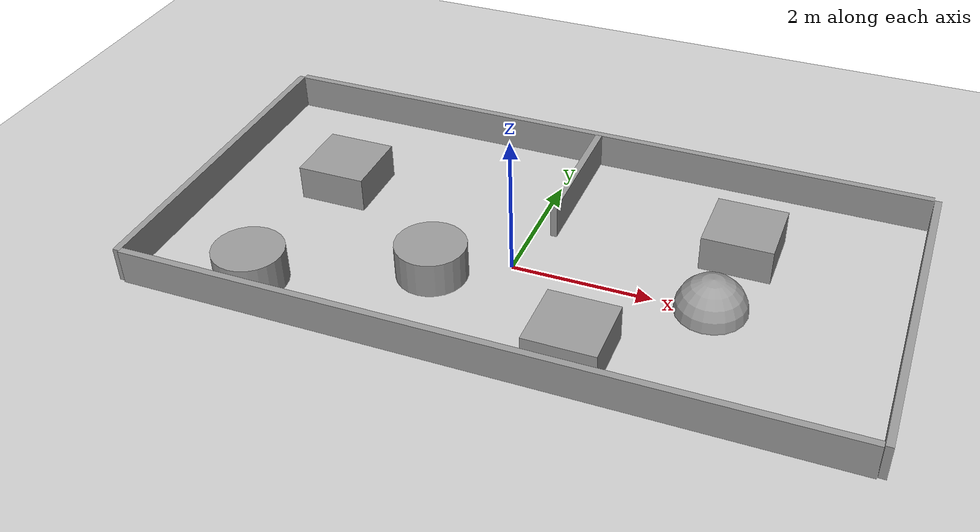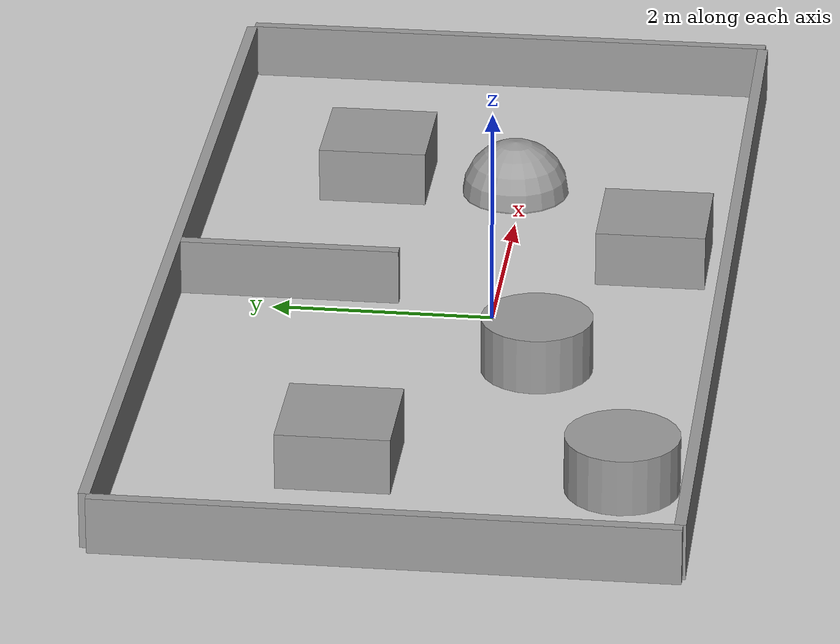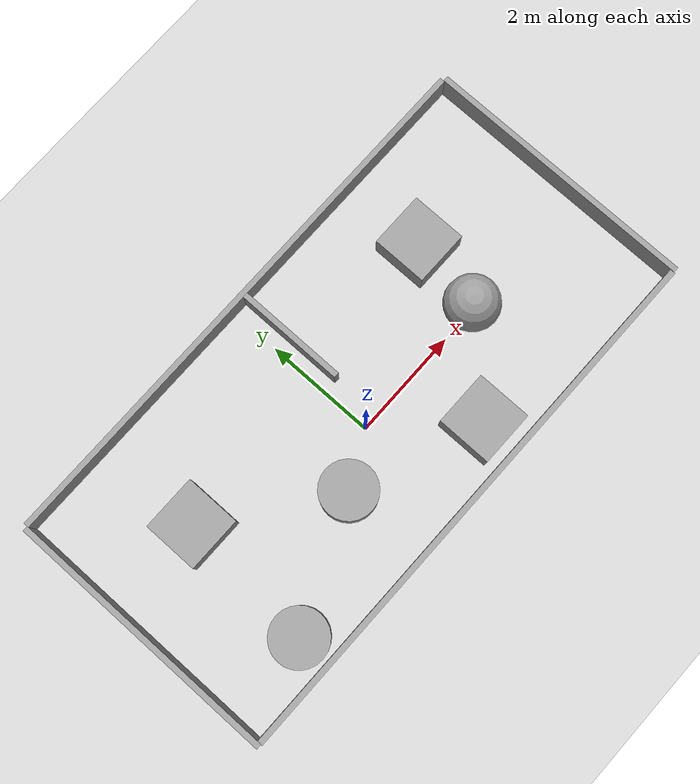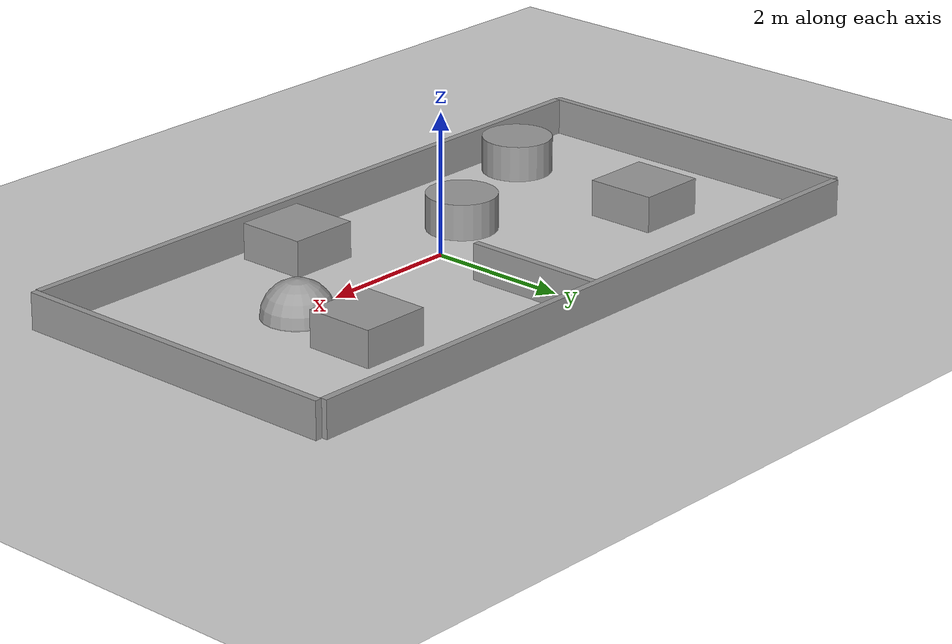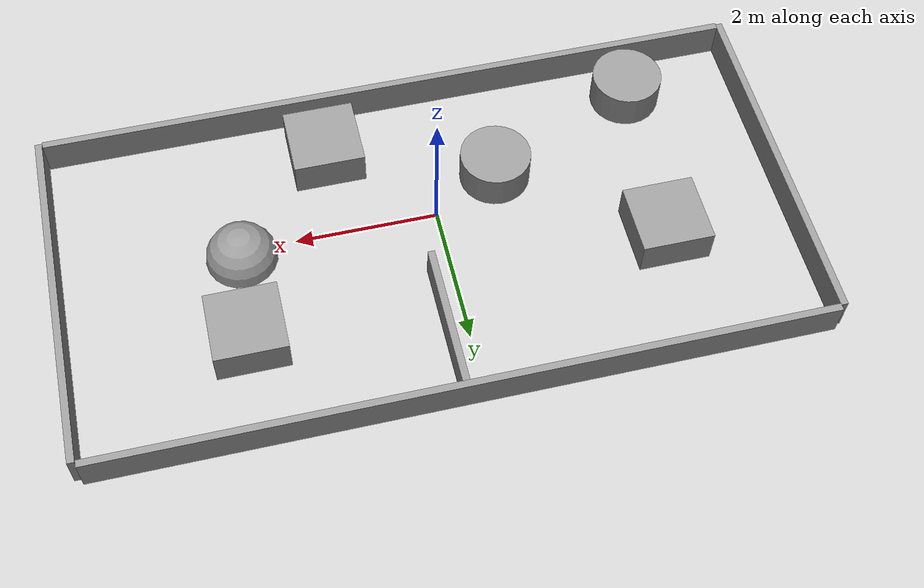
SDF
<?xml version="1.0"?>
<sdf version="1.4">
  <world name="default">

    <!-- Ground Plane -->
    <include>
      <uri>model://ground_plane</uri>
    </include>

    <include>
      <uri>model://sun</uri>
    </include>
    <!-- A simple warehouse -->
    <include>
        <uri>model://alex_warehouse</uri>
        <pose>0 0 0 0 0 0</pose>
    </include>

  </world>
</sdf>

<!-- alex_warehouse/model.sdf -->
<sdf version='1.7'>
  <model name='alex_warehouse'>
    <link name='link_0'>
      <inertial>
        <mass>1</mass>
        <inertia>
          <ixx>0.166667</ixx>
          <ixy>0</ixy>
          <ixz>0</ixz>
          <iyy>0.166667</iyy>
          <iyz>0</iyz>
          <izz>0.166667</izz>
        </inertia>
        <pose>0 0 0 0 -0 0</pose>
      </inertial>
      <pose>0.225405 -2.07708 -0 0 -0 0</pose>
      <gravity>1</gravity>
      <self_collide>0</self_collide>
      <kinematic>0</kinematic>
      <enable_wind>0</enable_wind>
      <visual name='visual'>
        <pose>0 0 0 0 -0 0</pose>
        <geometry>
          <box>
            <size>10 0.1 1</size>
          </box>
        </geometry>
        <material>
          <lighting>1</lighting>
          <script>
            <uri>file://media/materials/scripts/gazebo.material</uri>
            <name>Gazebo/Grey</name>
          </script>
          <shader type='pixel'>
            <normal_map>__default__</normal_map>
          </shader>
          <ambient>0.3 0.3 0.3 1</ambient>
          <diffuse>0.7 0.7 0.7 1</diffuse>
          <specular>0.01 0.01 0.01 1</specular>
          <emissive>0 0 0 1</emissive>
        </material>
        <transparency>0</transparency>
        <cast_shadows>1</cast_shadows>
      </visual>
      <collision name='collision'>
        <laser_retro>0</laser_retro>
        <max_contacts>10</max_contacts>
        <pose>0 0 0 0 -0 0</pose>
        <geometry>
          <box>
            <size>10 0.1 1</size>
          </box>
        </geometry>
        <surface>
          <friction>
            <ode>
              <mu>1</mu>
              <mu2>1</mu2>
              <fdir1>0 0 0</fdir1>
              <slip1>0</slip1>
              <slip2>0</slip2>
            </ode>
            <torsional>
              <coefficient>1</coefficient>
              <patch_radius>0</patch_radius>
              <surface_radius>0</surface_radius>
              <use_patch_radius>1</use_patch_radius>
              <ode>
                <slip>0</slip>
              </ode>
            </torsional>
          </friction>
          <bounce>
            <restitution_coefficient>0</restitution_coefficient>
            <threshold>1e+06</threshold>
          </bounce>
          <contact>
            <collide_without_contact>0</collide_without_contact>
            <collide_without_contact_bitmask>1</collide_without_contact_bitmask>
            <collide_bitmask>1</collide_bitmask>
            <ode>
              <soft_cfm>0</soft_cfm>
              <soft_erp>0.2</soft_erp>
              <kp>1e+13</kp>
              <kd>1</kd>
              <max_vel>0.01</max_vel>
              <min_depth>0</min_depth>
            </ode>
            <bullet>
              <split_impulse>1</split_impulse>
              <split_impulse_penetration_threshold>-0.01</split_impulse_penetration_threshold>
              <soft_cfm>0</soft_cfm>
              <soft_erp>0.2</soft_erp>
              <kp>1e+13</kp>
              <kd>1</kd>
            </bullet>
          </contact>
        </surface>
      </collision>
    </link>
    <link name='link_0_clone'>
      <inertial>
        <mass>1</mass>
        <inertia>
          <ixx>0.166667</ixx>
          <ixy>0</ixy>
          <ixz>0</ixz>
          <iyy>0.166667</iyy>
          <iyz>0</iyz>
          <izz>0.166667</izz>
        </inertia>
        <pose>0 0 0 0 -0 0</pose>
      </inertial>
      <pose>0.225405 2.92292 -0 0 -0 0</pose>
      <gravity>1</gravity>
      <self_collide>0</self_collide>
      <kinematic>0</kinematic>
      <enable_wind>0</enable_wind>
      <visual name='visual'>
        <pose>0 0 0 0 -0 0</pose>
        <geometry>
          <box>
            <size>10 0.1 1</size>
          </box>
        </geometry>
        <material>
          <lighting>1</lighting>
          <script>
            <uri>file://media/materials/scripts/gazebo.material</uri>
            <name>Gazebo/Grey</name>
          </script>
          <shader type='pixel'>
            <normal_map>__default__</normal_map>
          </shader>
          <ambient>0.3 0.3 0.3 1</ambient>
          <diffuse>0.7 0.7 0.7 1</diffuse>
          <specular>0.01 0.01 0.01 1</specular>
          <emissive>0 0 0 1</emissive>
        </material>
        <transparency>0</transparency>
        <cast_shadows>1</cast_shadows>
      </visual>
      <collision name='collision'>
        <laser_retro>0</laser_retro>
        <max_contacts>10</max_contacts>
        <pose>0 0 0 0 -0 0</pose>
        <geometry>
          <box>
            <size>10 0.1 1</size>
          </box>
        </geometry>
        <surface>
          <friction>
            <ode>
              <mu>1</mu>
              <mu2>1</mu2>
              <fdir1>0 0 0</fdir1>
              <slip1>0</slip1>
              <slip2>0</slip2>
            </ode>
            <torsional>
              <coefficient>1</coefficient>
              <patch_radius>0</patch_radius>
              <surface_radius>0</surface_radius>
              <use_patch_radius>1</use_patch_radius>
              <ode>
                <slip>0</slip>
              </ode>
            </torsional>
          </friction>
          <bounce>
            <restitution_coefficient>0</restitution_coefficient>
            <threshold>1e+06</threshold>
          </bounce>
          <contact>
            <collide_without_contact>0</collide_without_contact>
            <collide_without_contact_bitmask>1</collide_without_contact_bitmask>
            <collide_bitmask>1</collide_bitmask>
            <ode>
              <soft_cfm>0</soft_cfm>
              <soft_erp>0.2</soft_erp>
              <kp>1e+13</kp>
              <kd>1</kd>
              <max_vel>0.01</max_vel>
              <min_depth>0</min_depth>
            </ode>
            <bullet>
              <split_impulse>1</split_impulse>
              <split_impulse_penetration_threshold>-0.01</split_impulse_penetration_threshold>
              <soft_cfm>0</soft_cfm>
              <soft_erp>0.2</soft_erp>
              <kp>1e+13</kp>
              <kd>1</kd>
            </bullet>
          </contact>
        </surface>
      </collision>
    </link>
    <link name='link_2'>
      <inertial>
        <mass>1</mass>
        <inertia>
          <ixx>0.145833</ixx>
          <ixy>0</ixy>
          <ixz>0</ixz>
          <iyy>0.145833</iyy>
          <iyz>0</iyz>
          <izz>0.125</izz>
        </inertia>
        <pose>0 0 0 0 -0 0</pose>
      </inertial>
      <pose>-0.967524 -0.500887 -0 0 -0 0</pose>
      <self_collide>0</self_collide>
      <enable_wind>0</enable_wind>
      <kinematic>0</kinematic>
      <visual name='visual'>
        <pose>0 0 0 0 -0 0</pose>
        <geometry>
          <cylinder>
            <radius>0.5</radius>
            <length>1</length>
          </cylinder>
        </geometry>
        <material>
          <lighting>1</lighting>
          <script>
            <uri>file://media/materials/scripts/gazebo.material</uri>
            <name>Gazebo/Grey</name>
          </script>
          <shader type='pixel'/>
        </material>
        <transparency>0</transparency>
        <cast_shadows>1</cast_shadows>
      </visual>
      <collision name='collision'>
        <laser_retro>0</laser_retro>
        <max_contacts>10</max_contacts>
        <pose>0 0 0 0 -0 0</pose>
        <geometry>
          <cylinder>
            <radius>0.5</radius>
            <length>1</length>
          </cylinder>
        </geometry>
        <surface>
          <friction>
            <ode>
              <mu>1</mu>
              <mu2>1</mu2>
              <fdir1>0 0 0</fdir1>
              <slip1>0</slip1>
              <slip2>0</slip2>
            </ode>
            <torsional>
              <coefficient>1</coefficient>
              <patch_radius>0</patch_radius>
              <surface_radius>0</surface_radius>
              <use_patch_radius>1</use_patch_radius>
              <ode>
                <slip>0</slip>
              </ode>
            </torsional>
          </friction>
          <bounce>
            <restitution_coefficient>0</restitution_coefficient>
            <threshold>1e+06</threshold>
          </bounce>
          <contact>
            <collide_without_contact>0</collide_without_contact>
            <collide_without_contact_bitmask>1</collide_without_contact_bitmask>
            <collide_bitmask>1</collide_bitmask>
            <ode>
              <soft_cfm>0</soft_cfm>
              <soft_erp>0.2</soft_erp>
              <kp>1e+13</kp>
              <kd>1</kd>
              <max_vel>0.01</max_vel>
              <min_depth>0</min_depth>
            </ode>
            <bullet>
              <split_impulse>1</split_impulse>
              <split_impulse_penetration_threshold>-0.01</split_impulse_penetration_threshold>
              <soft_cfm>0</soft_cfm>
              <soft_erp>0.2</soft_erp>
              <kp>1e+13</kp>
              <kd>1</kd>
            </bullet>
          </contact>
        </surface>
      </collision>
    </link>
    <link name='link_3'>
      <inertial>
        <mass>1</mass>
        <inertia>
          <ixx>0.145833</ixx>
          <ixy>0</ixy>
          <ixz>0</ixz>
          <iyy>0.145833</iyy>
          <iyz>0</iyz>
          <izz>0.125</izz>
        </inertia>
        <pose>0 0 0 0 -0 0</pose>
      </inertial>
      <pose>-3.19284 -1.45805 -0 0 -0 0</pose>
      <self_collide>0</self_collide>
      <enable_wind>0</enable_wind>
      <kinematic>0</kinematic>
      <visual name='visual'>
        <pose>0 0 0 0 -0 0</pose>
        <geometry>
          <cylinder>
            <radius>0.5</radius>
            <length>1</length>
          </cylinder>
        </geometry>
        <material>
          <lighting>1</lighting>
          <script>
            <uri>file://media/materials/scripts/gazebo.material</uri>
            <name>Gazebo/Grey</name>
          </script>
          <shader type='pixel'/>
          <emissive>0 0 0 1</emissive>
        </material>
        <transparency>0</transparency>
        <cast_shadows>1</cast_shadows>
      </visual>
      <collision name='collision'>
        <laser_retro>0</laser_retro>
        <max_contacts>10</max_contacts>
        <pose>0 0 0 0 -0 0</pose>
        <geometry>
          <cylinder>
            <radius>0.5</radius>
            <length>1</length>
          </cylinder>
        </geometry>
        <surface>
          <friction>
            <ode>
              <mu>1</mu>
              <mu2>1</mu2>
              <fdir1>0 0 0</fdir1>
              <slip1>0</slip1>
              <slip2>0</slip2>
            </ode>
            <torsional>
              <coefficient>1</coefficient>
              <patch_radius>0</patch_radius>
              <surface_radius>0</surface_radius>
              <use_patch_radius>1</use_patch_radius>
              <ode>
                <slip>0</slip>
              </ode>
            </torsional>
          </friction>
          <bounce>
            <restitution_coefficient>0</restitution_coefficient>
            <threshold>1e+06</threshold>
          </bounce>
          <contact>
            <collide_without_contact>0</collide_without_contact>
            <collide_without_contact_bitmask>1</collide_without_contact_bitmask>
            <collide_bitmask>1</collide_bitmask>
            <ode>
              <soft_cfm>0</soft_cfm>
              <soft_erp>0.2</soft_erp>
              <kp>1e+13</kp>
              <kd>1</kd>
              <max_vel>0.01</max_vel>
              <min_depth>0</min_depth>
            </ode>
            <bullet>
              <split_impulse>1</split_impulse>
              <split_impulse_penetration_threshold>-0.01</split_impulse_penetration_threshold>
              <soft_cfm>0</soft_cfm>
              <soft_erp>0.2</soft_erp>
              <kp>1e+13</kp>
              <kd>1</kd>
            </bullet>
          </contact>
        </surface>
      </collision>
    </link>
    <link name='link_4'>
      <inertial>
        <mass>1</mass>
        <inertia>
          <ixx>0.166667</ixx>
          <ixy>0</ixy>
          <ixz>0</ixz>
          <iyy>0.166667</iyy>
          <iyz>0</iyz>
          <izz>0.166667</izz>
        </inertia>
        <pose>0 0 0 0 -0 0</pose>
      </inertial>
      <pose>-3.01769 0.995886 -0 0 -0 0</pose>
      <self_collide>0</self_collide>
      <enable_wind>0</enable_wind>
      <kinematic>0</kinematic>
      <visual name='visual'>
        <pose>0 0 0 0 -0 0</pose>
        <geometry>
          <box>
            <size>1 1 1</size>
          </box>
        </geometry>
        <material>
          <lighting>1</lighting>
          <script>
            <uri>file://media/materials/scripts/gazebo.material</uri>
            <name>Gazebo/Grey</name>
          </script>
          <shader type='pixel'/>
          <emissive>0 0 0 1</emissive>
        </material>
        <transparency>0</transparency>
        <cast_shadows>1</cast_shadows>
      </visual>
      <collision name='collision'>
        <laser_retro>0</laser_retro>
        <max_contacts>10</max_contacts>
        <pose>0 0 0 0 -0 0</pose>
        <geometry>
          <box>
            <size>1 1 1</size>
          </box>
        </geometry>
        <surface>
          <friction>
            <ode>
              <mu>1</mu>
              <mu2>1</mu2>
              <fdir1>0 0 0</fdir1>
              <slip1>0</slip1>
              <slip2>0</slip2>
            </ode>
            <torsional>
              <coefficient>1</coefficient>
              <patch_radius>0</patch_radius>
              <surface_radius>0</surface_radius>
              <use_patch_radius>1</use_patch_radius>
              <ode>
                <slip>0</slip>
              </ode>
            </torsional>
          </friction>
          <bounce>
            <restitution_coefficient>0</restitution_coefficient>
            <threshold>1e+06</threshold>
          </bounce>
          <contact>
            <collide_without_contact>0</collide_without_contact>
            <collide_without_contact_bitmask>1</collide_without_contact_bitmask>
            <collide_bitmask>1</collide_bitmask>
            <ode>
              <soft_cfm>0</soft_cfm>
              <soft_erp>0.2</soft_erp>
              <kp>1e+13</kp>
              <kd>1</kd>
              <max_vel>0.01</max_vel>
              <min_depth>0</min_depth>
            </ode>
            <bullet>
              <split_impulse>1</split_impulse>
              <split_impulse_penetration_threshold>-0.01</split_impulse_penetration_threshold>
              <soft_cfm>0</soft_cfm>
              <soft_erp>0.2</soft_erp>
              <kp>1e+13</kp>
              <kd>1</kd>
            </bullet>
          </contact>
        </surface>
      </collision>
    </link>
    <link name='link_5'>
      <inertial>
        <mass>1</mass>
        <inertia>
          <ixx>0.1</ixx>
          <ixy>0</ixy>
          <ixz>0</ixz>
          <iyy>0.1</iyy>
          <iyz>0</iyz>
          <izz>0.1</izz>
        </inertia>
        <pose>0 0 0 0 -0 0</pose>
      </inertial>
      <pose>2.76939 0.075654 -0 0 -0 0</pose>
      <self_collide>0</self_collide>
      <enable_wind>0</enable_wind>
      <kinematic>0</kinematic>
      <visual name='visual'>
        <pose>0 0 0 0 -0 0</pose>
        <geometry>
          <sphere>
            <radius>0.5</radius>
          </sphere>
        </geometry>
        <material>
          <lighting>1</lighting>
          <script>
            <uri>file://media/materials/scripts/gazebo.material</uri>
            <name>Gazebo/Grey</name>
          </script>
          <shader type='pixel'/>
        </material>
        <transparency>0</transparency>
        <cast_shadows>1</cast_shadows>
      </visual>
      <collision name='collision'>
        <laser_retro>0</laser_retro>
        <max_contacts>10</max_contacts>
        <pose>0 0 0 0 -0 0</pose>
        <geometry>
          <sphere>
            <radius>0.5</radius>
          </sphere>
        </geometry>
        <surface>
          <friction>
            <ode>
              <mu>1</mu>
              <mu2>1</mu2>
              <fdir1>0 0 0</fdir1>
              <slip1>0</slip1>
              <slip2>0</slip2>
            </ode>
            <torsional>
              <coefficient>1</coefficient>
              <patch_radius>0</patch_radius>
              <surface_radius>0</surface_radius>
              <use_patch_radius>1</use_patch_radius>
              <ode>
                <slip>0</slip>
              </ode>
            </torsional>
          </friction>
          <bounce>
            <restitution_coefficient>0</restitution_coefficient>
            <threshold>1e+06</threshold>
          </bounce>
          <contact>
            <collide_without_contact>0</collide_without_contact>
            <collide_without_contact_bitmask>1</collide_without_contact_bitmask>
            <collide_bitmask>1</collide_bitmask>
            <ode>
              <soft_cfm>0</soft_cfm>
              <soft_erp>0.2</soft_erp>
              <kp>1e+13</kp>
              <kd>1</kd>
              <max_vel>0.01</max_vel>
              <min_depth>0</min_depth>
            </ode>
            <bullet>
              <split_impulse>1</split_impulse>
              <split_impulse_penetration_threshold>-0.01</split_impulse_penetration_threshold>
              <soft_cfm>0</soft_cfm>
              <soft_erp>0.2</soft_erp>
              <kp>1e+13</kp>
              <kd>1</kd>
            </bullet>
          </contact>
        </surface>
      </collision>
    </link>
    <link name='link_6'>
      <inertial>
        <mass>1</mass>
        <inertia>
          <ixx>0.166667</ixx>
          <ixy>0</ixy>
          <ixz>0</ixz>
          <iyy>0.166667</iyy>
          <iyz>0</iyz>
          <izz>0.166667</izz>
        </inertia>
        <pose>0 0 0 0 -0 0</pose>
      </inertial>
      <pose>0.282205 1.87917 0 0 -0 0</pose>
      <gravity>1</gravity>
      <self_collide>0</self_collide>
      <kinematic>0</kinematic>
      <enable_wind>0</enable_wind>
      <visual name='visual'>
        <pose>0 0 0 0 -0 0</pose>
        <geometry>
          <box>
            <size>0.1 2 1</size>
          </box>
        </geometry>
        <material>
          <lighting>1</lighting>
          <script>
            <uri>file://media/materials/scripts/gazebo.material</uri>
            <name>Gazebo/Grey</name>
          </script>
          <shader type='pixel'>
            <normal_map>__default__</normal_map>
          </shader>
          <emissive>0 0 0 1</emissive>
          <ambient>0.3 0.3 0.3 1</ambient>
          <diffuse>0.7 0.7 0.7 1</diffuse>
          <specular>0.01 0.01 0.01 1</specular>
        </material>
        <transparency>0</transparency>
        <cast_shadows>1</cast_shadows>
      </visual>
      <collision name='collision'>
        <laser_retro>0</laser_retro>
        <max_contacts>10</max_contacts>
        <pose>0 0 0 0 -0 0</pose>
        <geometry>
          <box>
            <size>0.1 2 1</size>
          </box>
        </geometry>
        <surface>
          <friction>
            <ode>
              <mu>1</mu>
              <mu2>1</mu2>
              <fdir1>0 0 0</fdir1>
              <slip1>0</slip1>
              <slip2>0</slip2>
            </ode>
            <torsional>
              <coefficient>1</coefficient>
              <patch_radius>0</patch_radius>
              <surface_radius>0</surface_radius>
              <use_patch_radius>1</use_patch_radius>
              <ode>
                <slip>0</slip>
              </ode>
            </torsional>
          </friction>
          <bounce>
            <restitution_coefficient>0</restitution_coefficient>
            <threshold>1e+06</threshold>
          </bounce>
          <contact>
            <collide_without_contact>0</collide_without_contact>
            <collide_without_contact_bitmask>1</collide_without_contact_bitmask>
            <collide_bitmask>1</collide_bitmask>
            <ode>
              <soft_cfm>0</soft_cfm>
              <soft_erp>0.2</soft_erp>
              <kp>1e+13</kp>
              <kd>1</kd>
              <max_vel>0.01</max_vel>
              <min_depth>0</min_depth>
            </ode>
            <bullet>
              <split_impulse>1</split_impulse>
              <split_impulse_penetration_threshold>-0.01</split_impulse_penetration_threshold>
              <soft_cfm>0</soft_cfm>
              <soft_erp>0.2</soft_erp>
              <kp>1e+13</kp>
              <kd>1</kd>
            </bullet>
          </contact>
        </surface>
      </collision>
    </link>
    <link name='link_7'>
      <inertial>
        <mass>1</mass>
        <inertia>
          <ixx>0.166667</ixx>
          <ixy>0</ixy>
          <ixz>0</ixz>
          <iyy>0.166667</iyy>
          <iyz>0</iyz>
          <izz>0.166667</izz>
        </inertia>
        <pose>0 0 0 0 -0 0</pose>
      </inertial>
      <pose>5.28221 0.399167 -0 0 -0 0</pose>
      <gravity>1</gravity>
      <self_collide>0</self_collide>
      <kinematic>0</kinematic>
      <enable_wind>0</enable_wind>
      <visual name='visual'>
        <pose>0 0 0 0 -0 0</pose>
        <geometry>
          <box>
            <size>0.1 5 1</size>
          </box>
        </geometry>
        <material>
          <lighting>1</lighting>
          <script>
            <uri>file://media/materials/scripts/gazebo.material</uri>
            <name>Gazebo/Grey</name>
          </script>
          <shader type='pixel'>
            <normal_map>__default__</normal_map>
          </shader>
          <ambient>0.3 0.3 0.3 1</ambient>
          <diffuse>0.7 0.7 0.7 1</diffuse>
          <specular>0.01 0.01 0.01 1</specular>
          <emissive>0 0 0 1</emissive>
        </material>
        <transparency>0</transparency>
        <cast_shadows>1</cast_shadows>
      </visual>
      <collision name='collision'>
        <laser_retro>0</laser_retro>
        <max_contacts>10</max_contacts>
        <pose>0 0 0 0 -0 0</pose>
        <geometry>
          <box>
            <size>0.1 5 1</size>
          </box>
        </geometry>
        <surface>
          <friction>
            <ode>
              <mu>1</mu>
              <mu2>1</mu2>
              <fdir1>0 0 0</fdir1>
              <slip1>0</slip1>
              <slip2>0</slip2>
            </ode>
            <torsional>
              <coefficient>1</coefficient>
              <patch_radius>0</patch_radius>
              <surface_radius>0</surface_radius>
              <use_patch_radius>1</use_patch_radius>
              <ode>
                <slip>0</slip>
              </ode>
            </torsional>
          </friction>
          <bounce>
            <restitution_coefficient>0</restitution_coefficient>
            <threshold>1e+06</threshold>
          </bounce>
          <contact>
            <collide_without_contact>0</collide_without_contact>
            <collide_without_contact_bitmask>1</collide_without_contact_bitmask>
            <collide_bitmask>1</collide_bitmask>
            <ode>
              <soft_cfm>0</soft_cfm>
              <soft_erp>0.2</soft_erp>
              <kp>1e+13</kp>
              <kd>1</kd>
              <max_vel>0.01</max_vel>
              <min_depth>0</min_depth>
            </ode>
            <bullet>
              <split_impulse>1</split_impulse>
              <split_impulse_penetration_threshold>-0.01</split_impulse_penetration_threshold>
              <soft_cfm>0</soft_cfm>
              <soft_erp>0.2</soft_erp>
              <kp>1e+13</kp>
              <kd>1</kd>
            </bullet>
          </contact>
        </surface>
      </collision>
    </link>
    <link name='link_7_clone'>
      <inertial>
        <mass>1</mass>
        <inertia>
          <ixx>0.166667</ixx>
          <ixy>0</ixy>
          <ixz>0</ixz>
          <iyy>0.166667</iyy>
          <iyz>0</iyz>
          <izz>0.166667</izz>
        </inertia>
        <pose>0 0 0 0 -0 0</pose>
      </inertial>
      <pose>-4.8178 0.399167 0 0 -0 0</pose>
      <gravity>1</gravity>
      <self_collide>0</self_collide>
      <kinematic>0</kinematic>
      <enable_wind>0</enable_wind>
      <visual name='visual'>
        <pose>0 0 0 0 -0 0</pose>
        <geometry>
          <box>
            <size>0.1 5 1</size>
          </box>
        </geometry>
        <material>
          <lighting>1</lighting>
          <script>
            <uri>file://media/materials/scripts/gazebo.material</uri>
            <name>Gazebo/Grey</name>
          </script>
          <shader type='pixel'>
            <normal_map>__default__</normal_map>
          </shader>
          <ambient>0.3 0.3 0.3 1</ambient>
          <diffuse>0.7 0.7 0.7 1</diffuse>
          <specular>0.01 0.01 0.01 1</specular>
          <emissive>0 0 0 1</emissive>
        </material>
        <transparency>0</transparency>
        <cast_shadows>1</cast_shadows>
      </visual>
      <collision name='collision'>
        <laser_retro>0</laser_retro>
        <max_contacts>10</max_contacts>
        <pose>0 0 0 0 -0 0</pose>
        <geometry>
          <box>
            <size>0.1 5 1</size>
          </box>
        </geometry>
        <surface>
          <friction>
            <ode>
              <mu>1</mu>
              <mu2>1</mu2>
              <fdir1>0 0 0</fdir1>
              <slip1>0</slip1>
              <slip2>0</slip2>
            </ode>
            <torsional>
              <coefficient>1</coefficient>
              <patch_radius>0</patch_radius>
              <surface_radius>0</surface_radius>
              <use_patch_radius>1</use_patch_radius>
              <ode>
                <slip>0</slip>
              </ode>
            </torsional>
          </friction>
          <bounce>
            <restitution_coefficient>0</restitution_coefficient>
            <threshold>1e+06</threshold>
          </bounce>
          <contact>
            <collide_without_contact>0</collide_without_contact>
            <collide_without_contact_bitmask>1</collide_without_contact_bitmask>
            <collide_bitmask>1</collide_bitmask>
            <ode>
              <soft_cfm>0</soft_cfm>
              <soft_erp>0.2</soft_erp>
              <kp>1e+13</kp>
              <kd>1</kd>
              <max_vel>0.01</max_vel>
              <min_depth>0</min_depth>
            </ode>
            <bullet>
              <split_impulse>1</split_impulse>
              <split_impulse_penetration_threshold>-0.01</split_impulse_penetration_threshold>
              <soft_cfm>0</soft_cfm>
              <soft_erp>0.2</soft_erp>
              <kp>1e+13</kp>
              <kd>1</kd>
            </bullet>
          </contact>
        </surface>
      </collision>
    </link>
    <link name='link_8'>
      <inertial>
        <mass>1</mass>
        <inertia>
          <ixx>0.166667</ixx>
          <ixy>0</ixy>
          <ixz>0</ixz>
          <iyy>0.166667</iyy>
          <iyz>0</iyz>
          <izz>0.166667</izz>
        </inertia>
        <pose>0 0 0 0 -0 0</pose>
      </inertial>
      <pose>1.33201 -1.35535 -0 0 -0 0</pose>
      <self_collide>0</self_collide>
      <enable_wind>0</enable_wind>
      <kinematic>0</kinematic>
      <visual name='visual'>
        <pose>0 0 0 0 -0 0</pose>
        <geometry>
          <box>
            <size>1 1 1</size>
          </box>
        </geometry>
        <material>
          <lighting>1</lighting>
          <script>
            <uri>file://media/materials/scripts/gazebo.material</uri>
            <name>Gazebo/Grey</name>
          </script>
          <shader type='pixel'/>
        </material>
        <transparency>0</transparency>
        <cast_shadows>1</cast_shadows>
      </visual>
      <collision name='collision'>
        <laser_retro>0</laser_retro>
        <max_contacts>10</max_contacts>
        <pose>0 0 0 0 -0 0</pose>
        <geometry>
          <box>
            <size>1 1 1</size>
          </box>
        </geometry>
        <surface>
          <friction>
            <ode>
              <mu>1</mu>
              <mu2>1</mu2>
              <fdir1>0 0 0</fdir1>
              <slip1>0</slip1>
              <slip2>0</slip2>
            </ode>
            <torsional>
              <coefficient>1</coefficient>
              <patch_radius>0</patch_radius>
              <surface_radius>0</surface_radius>
              <use_patch_radius>1</use_patch_radius>
              <ode>
                <slip>0</slip>
              </ode>
            </torsional>
          </friction>
          <bounce>
            <restitution_coefficient>0</restitution_coefficient>
            <threshold>1e+06</threshold>
          </bounce>
          <contact>
            <collide_without_contact>0</collide_without_contact>
            <collide_without_contact_bitmask>1</collide_without_contact_bitmask>
            <collide_bitmask>1</collide_bitmask>
            <ode>
              <soft_cfm>0</soft_cfm>
              <soft_erp>0.2</soft_erp>
              <kp>1e+13</kp>
              <kd>1</kd>
              <max_vel>0.01</max_vel>
              <min_depth>0</min_depth>
            </ode>
            <bullet>
              <split_impulse>1</split_impulse>
              <split_impulse_penetration_threshold>-0.01</split_impulse_penetration_threshold>
              <soft_cfm>0</soft_cfm>
              <soft_erp>0.2</soft_erp>
              <kp>1e+13</kp>
              <kd>1</kd>
            </bullet>
          </contact>
        </surface>
      </collision>
    </link>
    <link name='link_9'>
      <inertial>
        <mass>1</mass>
        <inertia>
          <ixx>0.166667</ixx>
          <ixy>0</ixy>
          <ixz>0</ixz>
          <iyy>0.166667</iyy>
          <iyz>0</iyz>
          <izz>0.166667</izz>
        </inertia>
        <pose>0 0 0 0 -0 0</pose>
      </inertial>
      <pose>2.88158 1.38722 0 0 -0 0</pose>
      <self_collide>0</self_collide>
      <enable_wind>0</enable_wind>
      <kinematic>0</kinematic>
      <visual name='visual'>
        <pose>0 0 0 0 -0 0</pose>
        <geometry>
          <box>
            <size>1 1 1</size>
          </box>
        </geometry>
        <material>
          <lighting>1</lighting>
          <script>
            <uri>file://media/materials/scripts/gazebo.material</uri>
            <name>Gazebo/Grey</name>
          </script>
          <shader type='pixel'/>
        </material>
        <transparency>0</transparency>
        <cast_shadows>1</cast_shadows>
      </visual>
      <collision name='collision'>
        <laser_retro>0</laser_retro>
        <max_contacts>10</max_contacts>
        <pose>0 0 0 0 -0 0</pose>
        <geometry>
          <box>
            <size>1 1 1</size>
          </box>
        </geometry>
        <surface>
          <friction>
            <ode>
              <mu>1</mu>
              <mu2>1</mu2>
              <fdir1>0 0 0</fdir1>
              <slip1>0</slip1>
              <slip2>0</slip2>
            </ode>
            <torsional>
              <coefficient>1</coefficient>
              <patch_radius>0</patch_radius>
              <surface_radius>0</surface_radius>
              <use_patch_radius>1</use_patch_radius>
              <ode>
                <slip>0</slip>
              </ode>
            </torsional>
          </friction>
          <bounce>
            <restitution_coefficient>0</restitution_coefficient>
            <threshold>1e+06</threshold>
          </bounce>
          <contact>
            <collide_without_contact>0</collide_without_contact>
            <collide_without_contact_bitmask>1</collide_without_contact_bitmask>
            <collide_bitmask>1</collide_bitmask>
            <ode>
              <soft_cfm>0</soft_cfm>
              <soft_erp>0.2</soft_erp>
              <kp>1e+13</kp>
              <kd>1</kd>
              <max_vel>0.01</max_vel>
              <min_depth>0</min_depth>
            </ode>
            <bullet>
              <split_impulse>1</split_impulse>
              <split_impulse_penetration_threshold>-0.01</split_impulse_penetration_threshold>
              <soft_cfm>0</soft_cfm>
              <soft_erp>0.2</soft_erp>
              <kp>1e+13</kp>
              <kd>1</kd>
            </bullet>
          </contact>
        </surface>
      </collision>
    </link>
    <joint name='link_7_JOINT_1' type='fixed'>
      <parent>link_7</parent>
      <child>link_0_clone</child>
      <pose>0 0 0 0 -0 0</pose>
      <physics>
        <ode>
          <limit>
            <cfm>0</cfm>
            <erp>0.2</erp>
          </limit>
          <suspension>
            <cfm>0</cfm>
            <erp>0.2</erp>
          </suspension>
        </ode>
      </physics>
    </joint>
    <joint name='link_7_JOINT_2' type='fixed'>
      <parent>link_7</parent>
      <child>link_0</child>
      <pose>0 0 0 0 -0 0</pose>
      <physics>
        <ode>
          <limit>
            <cfm>0</cfm>
            <erp>0.2</erp>
          </limit>
          <suspension>
            <cfm>0</cfm>
            <erp>0.2</erp>
          </suspension>
        </ode>
      </physics>
    </joint>
    <joint name='link_7_JOINT_3' type='fixed'>
      <parent>link_7</parent>
      <child>link_7_clone</child>
      <pose>0 0 0 0 -0 0</pose>
      <physics>
        <ode>
          <limit>
            <cfm>0</cfm>
            <erp>0.2</erp>
          </limit>
          <suspension>
            <cfm>0</cfm>
            <erp>0.2</erp>
          </suspension>
        </ode>
      </physics>
    </joint>
    <joint name='link_7_JOINT_4' type='fixed'>
      <parent>link_7</parent>
      <child>link_6</child>
      <pose>0 0 0 0 -0 0</pose>
      <physics>
        <ode>
          <limit>
            <cfm>0</cfm>
            <erp>0.2</erp>
          </limit>
          <suspension>
            <cfm>0</cfm>
            <erp>0.2</erp>
          </suspension>
        </ode>
      </physics>
    </joint>
    <static>0</static>
    <allow_auto_disable>1</allow_auto_disable>
  </model>
</sdf>
